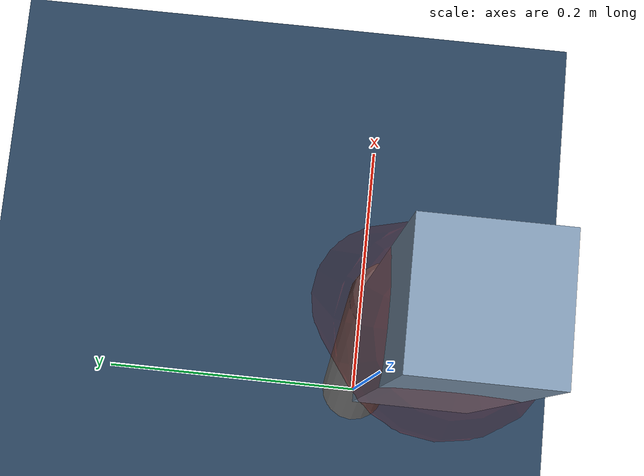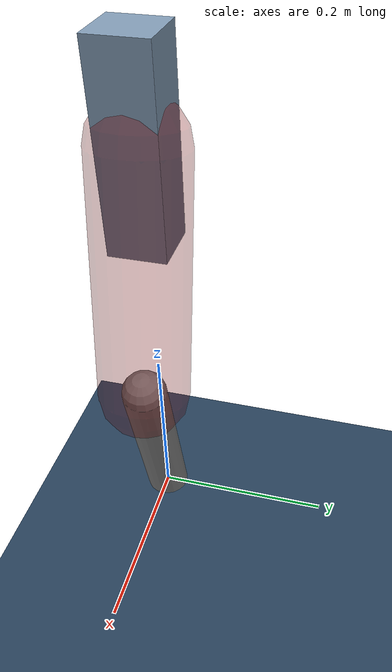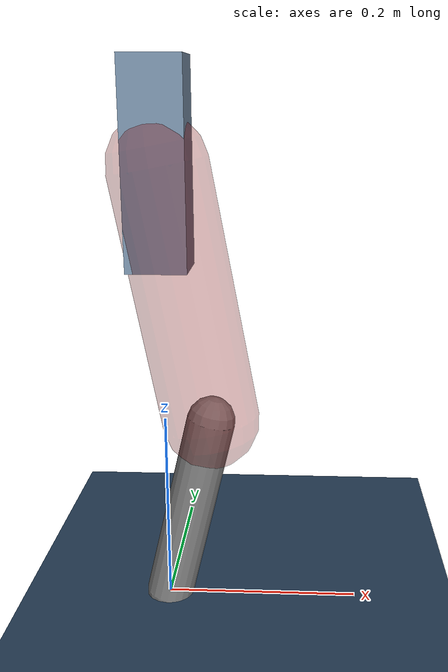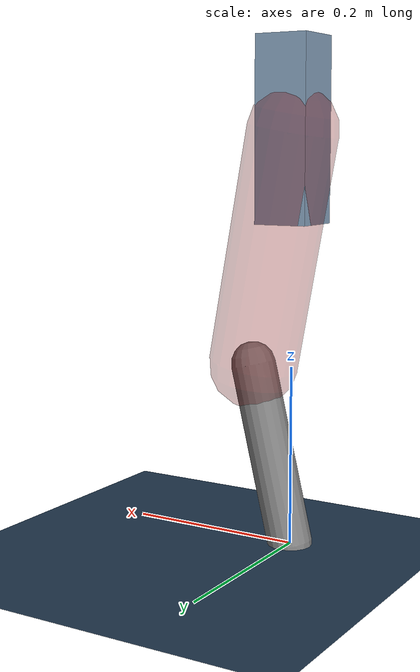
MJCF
<mujoco model="Hopper2D">
	<compiler inertiafromgeom="true" angle="radian" />
	<option timestep="0.001" integrator="implicit" cone="elliptic" solver="Newton" tolerance="1e-10" />

	<default>
		<geom contype="1" conaffinity="1" condim="3" friction="2 0.005 0.0001" solref="0.005 1" />
		<joint limited="true" damping="0.1" />
	</default>

	<asset>
		<texture name="skybox" type="skybox" builtin="gradient" rgb1=".4 .6 .8" rgb2="0 0 0" width="800" height="800" />
		<texture name="grid" type="2d" builtin="checker" rgb1=".1 .2 .3" rgb2=".2 .3 .4" width="300" height="300" mark="edge" markrgb=".2 .3 .4" />
		<material name="ground" texture="grid" texrepeat="1 1" texuniform="true" reflectance="0.1" />
		<material name="leg" rgba="0.5 0.6 0.7 1" />
	</asset>

	<worldbody>

		<geom name="floor" type="plane" size="5 5 0.25" material="ground" />

		<light directional="false" diffuse="0.8 0.8 0.8" specular="0.3 0.3 0.3" pos="0 0 2" dir="0 0 -1" />
		<light mode="targetbodycom" target="base" directional="false" diffuse="0.8 0.8 0.8" specular="0.3 0.3 0.3" pos="0 0 2" dir="0 0 -1" />

		<camera name="fixed" pos="0 -2 1" xyaxes="1 0 0 0 0 1" />
		<camera name="tracking" mode="trackcom" pos="0 -3 1" />

		<body name="root" pos="0 0 0.45725649358476733">
			<joint name="slide_x" type="slide" axis="1 0 0" range="-100 100" />
			<joint name="slide_z" type="slide" axis="0 0 1" range="0 10" />

			<body name="base" pos="0 0 0">
				<geom name="torso" type="box" size="0.03 0.03 0.1" mass="2.216" material="leg" />

				<body name="link1" pos="0 0 0" euler="0 1.387630452012598 0">
					<joint type="hinge" axis="0 -1 0" pos="0 0 0" name="hinge1" limited="true" range="-3.14 3.14" stiffness="0" damping="0.1" />
					<geom name="thigh" type="capsule" fromto="0 0 0 0.26191658550519714 0 0" size="0.05" rgba="0.5 0 0 0.3" mass="0.8873831223135125" />

					<body name="link2" pos="0.26191658550519714 0 0" euler="0 0.417637201425977 0">
						<joint type="hinge" axis="0 -1 0" pos="0 0 0" name="hinge2" limited="true" range="-3.14 3.14" stiffness="0" damping="0.1" />
						<geom name="shank" type="capsule" fromto="0 0 0 0.2053399080795702 0 0" size="0.025" mass="0.40537192646365616" />

					</body>
				</body>
			</body>
		</body>
	</worldbody>

	<actuator>
		<motor name="torque1" joint="hinge1" ctrlrange="-62.77110511581802 62.77110511581802" ctrllimited="true" gear="1" />
		<motor name="torque2" joint="hinge2" ctrlrange="-72.62088212602694 72.62088212602694" ctrllimited="true" gear="1" />
	</actuator>
</mujoco>
